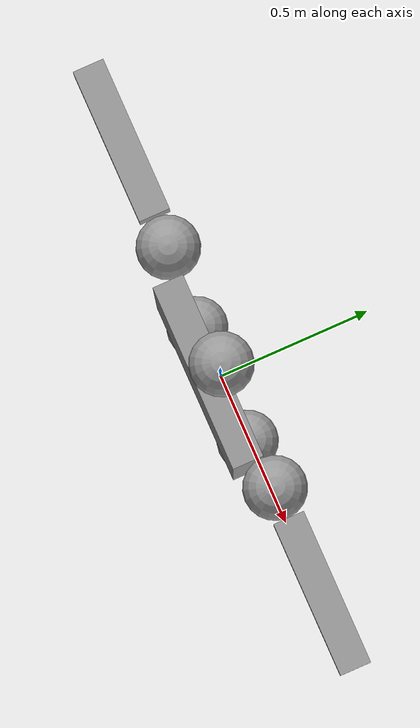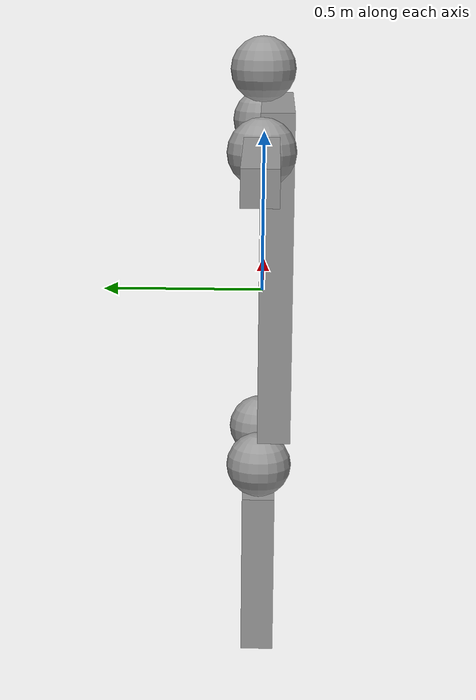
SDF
<?xml version='1.0'?>
<sdf version='1.6'>
  <model name='mr_robot_1'>
    <link name='link_0'>
      <inertial>
        <mass>1</mass>
        <inertia>
          <ixx>0.166667</ixx>
          <ixy>0</ixy>
          <ixz>0</ixz>
          <iyy>0.166667</iyy>
          <iyz>0</iyz>
          <izz>0.166667</izz>
        </inertia>
        <pose frame=''>0 0 0 0 -0 0</pose>
      </inertial>
      <pose frame=''>6.2e-05 -0.0405 0.089999 0 -0 0</pose>
      <gravity>1</gravity>
      <self_collide>0</self_collide>
      <kinematic>0</kinematic>
      <enable_wind>0</enable_wind>
      <visual name='visual'>
        <pose frame=''>0 0 0 0 -0 0</pose>
        <geometry>
          <box>
            <size>0.6 0.1 1</size>
          </box>
        </geometry>
        <material>
          <lighting>1</lighting>
          <script>
            <uri>file://media/materials/scripts/gazebo.material</uri>
            <name>Gazebo/Grey</name>
          </script>
          <shader type='vertex'>
            <normal_map>__default__</normal_map>
          </shader>
          <ambient>0.3 0.3 0.3 1</ambient>
          <diffuse>0.7 0.7 0.7 1</diffuse>
          <specular>0.01 0.01 0.01 1</specular>
          <emissive>0 0 0 1</emissive>
        </material>
        <transparency>0</transparency>
        <cast_shadows>1</cast_shadows>
      </visual>
      <collision name='collision'>
        <laser_retro>0</laser_retro>
        <max_contacts>10</max_contacts>
        <pose frame=''>0 0 0 0 -0 0</pose>
        <geometry>
          <box>
            <size>0.6 0.1 1</size>
          </box>
        </geometry>
        <surface>
          <friction>
            <ode>
              <mu>1</mu>
              <mu2>1</mu2>
              <fdir1>0 0 0</fdir1>
              <slip1>0</slip1>
              <slip2>0</slip2>
            </ode>
            <torsional>
              <coefficient>1</coefficient>
              <patch_radius>0</patch_radius>
              <surface_radius>0</surface_radius>
              <use_patch_radius>1</use_patch_radius>
              <ode>
                <slip>0</slip>
              </ode>
            </torsional>
          </friction>
          <bounce>
            <restitution_coefficient>0</restitution_coefficient>
            <threshold>1e+06</threshold>
          </bounce>
          <contact>
            <collide_without_contact>0</collide_without_contact>
            <collide_without_contact_bitmask>1</collide_without_contact_bitmask>
            <collide_bitmask>1</collide_bitmask>
            <ode>
              <soft_cfm>0</soft_cfm>
              <soft_erp>0.2</soft_erp>
              <kp>1e+13</kp>
              <kd>1</kd>
              <max_vel>0.01</max_vel>
              <min_depth>0</min_depth>
            </ode>
            <bullet>
              <split_impulse>1</split_impulse>
              <split_impulse_penetration_threshold>-0.01</split_impulse_penetration_threshold>
              <soft_cfm>0</soft_cfm>
              <soft_erp>0.2</soft_erp>
              <kp>1e+13</kp>
              <kd>1</kd>
            </bullet>
          </contact>
        </surface>
      </collision>
    </link>
    <link name='link_1_clone'>
      <inertial>
        <mass>1</mass>
        <inertia>
          <ixx>0.1</ixx>
          <ixy>0</ixy>
          <ixz>0</ixz>
          <iyy>0.1</iyy>
          <iyz>0</iyz>
          <izz>0.1</izz>
        </inertia>
        <pose frame=''>0 0 0 0 -0 0</pose>
      </inertial>
      <pose frame=''>0.200062 0.0045 -0.510001 0 -0 0</pose>
      <gravity>1</gravity>
      <self_collide>0</self_collide>
      <kinematic>0</kinematic>
      <enable_wind>0</enable_wind>
      <visual name='visual'>
        <pose frame=''>0 0 0 0 -0 0</pose>
        <geometry>
          <sphere>
            <radius>0.1</radius>
          </sphere>
        </geometry>
        <material>
          <lighting>1</lighting>
          <script>
            <uri>file://media/materials/scripts/gazebo.material</uri>
            <name>Gazebo/Grey</name>
          </script>
          <shader type='vertex'>
            <normal_map>__default__</normal_map>
          </shader>
          <ambient>0.3 0.3 0.3 1</ambient>
          <diffuse>0.7 0.7 0.7 1</diffuse>
          <specular>0.01 0.01 0.01 1</specular>
          <emissive>0 0 0 1</emissive>
        </material>
        <transparency>0</transparency>
        <cast_shadows>1</cast_shadows>
      </visual>
      <collision name='collision'>
        <laser_retro>0</laser_retro>
        <max_contacts>10</max_contacts>
        <pose frame=''>0 0 0 0 -0 0</pose>
        <geometry>
          <sphere>
            <radius>0.1</radius>
          </sphere>
        </geometry>
        <surface>
          <friction>
            <ode>
              <mu>1</mu>
              <mu2>1</mu2>
              <fdir1>0 0 0</fdir1>
              <slip1>0</slip1>
              <slip2>0</slip2>
            </ode>
            <torsional>
              <coefficient>1</coefficient>
              <patch_radius>0</patch_radius>
              <surface_radius>0</surface_radius>
              <use_patch_radius>1</use_patch_radius>
              <ode>
                <slip>0</slip>
              </ode>
            </torsional>
          </friction>
          <bounce>
            <restitution_coefficient>0</restitution_coefficient>
            <threshold>1e+06</threshold>
          </bounce>
          <contact>
            <collide_without_contact>0</collide_without_contact>
            <collide_without_contact_bitmask>1</collide_without_contact_bitmask>
            <collide_bitmask>1</collide_bitmask>
            <ode>
              <soft_cfm>0</soft_cfm>
              <soft_erp>0.2</soft_erp>
              <kp>1e+13</kp>
              <kd>1</kd>
              <max_vel>0.01</max_vel>
              <min_depth>0</min_depth>
            </ode>
            <bullet>
              <split_impulse>1</split_impulse>
              <split_impulse_penetration_threshold>-0.01</split_impulse_penetration_threshold>
              <soft_cfm>0</soft_cfm>
              <soft_erp>0.2</soft_erp>
              <kp>1e+13</kp>
              <kd>1</kd>
            </bullet>
          </contact>
        </surface>
      </collision>
    </link>
    <link name='link_1_clone_0'>
      <inertial>
        <mass>1</mass>
        <inertia>
          <ixx>0.1</ixx>
          <ixy>0</ixy>
          <ixz>0</ixz>
          <iyy>0.1</iyy>
          <iyz>0</iyz>
          <izz>0.1</izz>
        </inertia>
        <pose frame=''>0 0 0 0 -0 0</pose>
      </inertial>
      <pose frame=''>-0.399938 0.0045 0.489999 0 -0 0</pose>
      <gravity>1</gravity>
      <self_collide>0</self_collide>
      <kinematic>0</kinematic>
      <enable_wind>0</enable_wind>
      <visual name='visual'>
        <pose frame=''>0 0 0 0 -0 0</pose>
        <geometry>
          <sphere>
            <radius>0.1</radius>
          </sphere>
        </geometry>
        <material>
          <lighting>1</lighting>
          <script>
            <uri>file://media/materials/scripts/gazebo.material</uri>
            <name>Gazebo/Grey</name>
          </script>
          <shader type='vertex'>
            <normal_map>__default__</normal_map>
          </shader>
          <ambient>0.3 0.3 0.3 1</ambient>
          <diffuse>0.7 0.7 0.7 1</diffuse>
          <specular>0.01 0.01 0.01 1</specular>
          <emissive>0 0 0 1</emissive>
        </material>
        <transparency>0</transparency>
        <cast_shadows>1</cast_shadows>
      </visual>
      <collision name='collision'>
        <laser_retro>0</laser_retro>
        <max_contacts>10</max_contacts>
        <pose frame=''>0 0 0 0 -0 0</pose>
        <geometry>
          <sphere>
            <radius>0.1</radius>
          </sphere>
        </geometry>
        <surface>
          <friction>
            <ode>
              <mu>1</mu>
              <mu2>1</mu2>
              <fdir1>0 0 0</fdir1>
              <slip1>0</slip1>
              <slip2>0</slip2>
            </ode>
            <torsional>
              <coefficient>1</coefficient>
              <patch_radius>0</patch_radius>
              <surface_radius>0</surface_radius>
              <use_patch_radius>1</use_patch_radius>
              <ode>
                <slip>0</slip>
              </ode>
            </torsional>
          </friction>
          <bounce>
            <restitution_coefficient>0</restitution_coefficient>
            <threshold>1e+06</threshold>
          </bounce>
          <contact>
            <collide_without_contact>0</collide_without_contact>
            <collide_without_contact_bitmask>1</collide_without_contact_bitmask>
            <collide_bitmask>1</collide_bitmask>
            <ode>
              <soft_cfm>0</soft_cfm>
              <soft_erp>0.2</soft_erp>
              <kp>1e+13</kp>
              <kd>1</kd>
              <max_vel>0.01</max_vel>
              <min_depth>0</min_depth>
            </ode>
            <bullet>
              <split_impulse>1</split_impulse>
              <split_impulse_penetration_threshold>-0.01</split_impulse_penetration_threshold>
              <soft_cfm>0</soft_cfm>
              <soft_erp>0.2</soft_erp>
              <kp>1e+13</kp>
              <kd>1</kd>
            </bullet>
          </contact>
        </surface>
      </collision>
    </link>
    <link name='link_1_clone_0_clone'>
      <inertial>
        <mass>1</mass>
        <inertia>
          <ixx>0.1</ixx>
          <ixy>0</ixy>
          <ixz>0</ixz>
          <iyy>0.1</iyy>
          <iyz>0</iyz>
          <izz>0.1</izz>
        </inertia>
        <pose frame=''>0 0 0 0 -0 0</pose>
      </inertial>
      <pose frame=''>-0.199938 0.0045 -0.510001 0 -0 0</pose>
      <gravity>1</gravity>
      <self_collide>0</self_collide>
      <kinematic>0</kinematic>
      <enable_wind>0</enable_wind>
      <visual name='visual'>
        <pose frame=''>0 0 0 0 -0 0</pose>
        <geometry>
          <sphere>
            <radius>0.1</radius>
          </sphere>
        </geometry>
        <material>
          <lighting>1</lighting>
          <script>
            <uri>file://media/materials/scripts/gazebo.material</uri>
            <name>Gazebo/Grey</name>
          </script>
          <shader type='vertex'>
            <normal_map>__default__</normal_map>
          </shader>
          <ambient>0.3 0.3 0.3 1</ambient>
          <diffuse>0.7 0.7 0.7 1</diffuse>
          <specular>0.01 0.01 0.01 1</specular>
          <emissive>0 0 0 1</emissive>
        </material>
        <transparency>0</transparency>
        <cast_shadows>1</cast_shadows>
      </visual>
      <collision name='collision'>
        <laser_retro>0</laser_retro>
        <max_contacts>10</max_contacts>
        <pose frame=''>0 0 0 0 -0 0</pose>
        <geometry>
          <sphere>
            <radius>0.1</radius>
          </sphere>
        </geometry>
        <surface>
          <friction>
            <ode>
              <mu>1</mu>
              <mu2>1</mu2>
              <fdir1>0 0 0</fdir1>
              <slip1>0</slip1>
              <slip2>0</slip2>
            </ode>
            <torsional>
              <coefficient>1</coefficient>
              <patch_radius>0</patch_radius>
              <surface_radius>0</surface_radius>
              <use_patch_radius>1</use_patch_radius>
              <ode>
                <slip>0</slip>
              </ode>
            </torsional>
          </friction>
          <bounce>
            <restitution_coefficient>0</restitution_coefficient>
            <threshold>1e+06</threshold>
          </bounce>
          <contact>
            <collide_without_contact>0</collide_without_contact>
            <collide_without_contact_bitmask>1</collide_without_contact_bitmask>
            <collide_bitmask>1</collide_bitmask>
            <ode>
              <soft_cfm>0</soft_cfm>
              <soft_erp>0.2</soft_erp>
              <kp>1e+13</kp>
              <kd>1</kd>
              <max_vel>0.01</max_vel>
              <min_depth>0</min_depth>
            </ode>
            <bullet>
              <split_impulse>1</split_impulse>
              <split_impulse_penetration_threshold>-0.01</split_impulse_penetration_threshold>
              <soft_cfm>0</soft_cfm>
              <soft_erp>0.2</soft_erp>
              <kp>1e+13</kp>
              <kd>1</kd>
            </bullet>
          </contact>
        </surface>
      </collision>
    </link>
    <link name='link_1_clone_1'>
      <inertial>
        <mass>1</mass>
        <inertia>
          <ixx>0.1</ixx>
          <ixy>0</ixy>
          <ixz>0</ixz>
          <iyy>0.1</iyy>
          <iyz>0</iyz>
          <izz>0.1</izz>
        </inertia>
        <pose frame=''>0 0 0 0 -0 0</pose>
      </inertial>
      <pose frame=''>0.400062 0.0045 0.489999 0 -0 0</pose>
      <gravity>1</gravity>
      <self_collide>0</self_collide>
      <kinematic>0</kinematic>
      <enable_wind>0</enable_wind>
      <visual name='visual'>
        <pose frame=''>0 0 0 0 -0 0</pose>
        <geometry>
          <sphere>
            <radius>0.1</radius>
          </sphere>
        </geometry>
        <material>
          <lighting>1</lighting>
          <script>
            <uri>file://media/materials/scripts/gazebo.material</uri>
            <name>Gazebo/Grey</name>
          </script>
          <shader type='vertex'>
            <normal_map>__default__</normal_map>
          </shader>
          <ambient>0.3 0.3 0.3 1</ambient>
          <diffuse>0.7 0.7 0.7 1</diffuse>
          <specular>0.01 0.01 0.01 1</specular>
          <emissive>0 0 0 1</emissive>
        </material>
        <transparency>0</transparency>
        <cast_shadows>1</cast_shadows>
      </visual>
      <collision name='collision'>
        <laser_retro>0</laser_retro>
        <max_contacts>10</max_contacts>
        <pose frame=''>0 0 0 0 -0 0</pose>
        <geometry>
          <sphere>
            <radius>0.1</radius>
          </sphere>
        </geometry>
        <surface>
          <friction>
            <ode>
              <mu>1</mu>
              <mu2>1</mu2>
              <fdir1>0 0 0</fdir1>
              <slip1>0</slip1>
              <slip2>0</slip2>
            </ode>
            <torsional>
              <coefficient>1</coefficient>
              <patch_radius>0</patch_radius>
              <surface_radius>0</surface_radius>
              <use_patch_radius>1</use_patch_radius>
              <ode>
                <slip>0</slip>
              </ode>
            </torsional>
          </friction>
          <bounce>
            <restitution_coefficient>0</restitution_coefficient>
            <threshold>1e+06</threshold>
          </bounce>
          <contact>
            <collide_without_contact>0</collide_without_contact>
            <collide_without_contact_bitmask>1</collide_without_contact_bitmask>
            <collide_bitmask>1</collide_bitmask>
            <ode>
              <soft_cfm>0</soft_cfm>
              <soft_erp>0.2</soft_erp>
              <kp>1e+13</kp>
              <kd>1</kd>
              <max_vel>0.01</max_vel>
              <min_depth>0</min_depth>
            </ode>
            <bullet>
              <split_impulse>1</split_impulse>
              <split_impulse_penetration_threshold>-0.01</split_impulse_penetration_threshold>
              <soft_cfm>0</soft_cfm>
              <soft_erp>0.2</soft_erp>
              <kp>1e+13</kp>
              <kd>1</kd>
            </bullet>
          </contact>
        </surface>
      </collision>
    </link>
    <link name='link_1_clone_1_clone'>
      <inertial>
        <mass>1</mass>
        <inertia>
          <ixx>0.1</ixx>
          <ixy>0</ixy>
          <ixz>0</ixz>
          <iyy>0.1</iyy>
          <iyz>0</iyz>
          <izz>0.1</izz>
        </inertia>
        <pose frame=''>0 0 0 0 -0 0</pose>
      </inertial>
      <pose frame=''>6.2e-05 0.0045 0.689999 0 -0 0</pose>
      <gravity>1</gravity>
      <self_collide>0</self_collide>
      <kinematic>0</kinematic>
      <enable_wind>0</enable_wind>
      <visual name='visual'>
        <pose frame=''>0 0 0 0 -0 0</pose>
        <geometry>
          <sphere>
            <radius>0.1</radius>
          </sphere>
        </geometry>
        <material>
          <lighting>1</lighting>
          <script>
            <uri>file://media/materials/scripts/gazebo.material</uri>
            <name>Gazebo/Grey</name>
          </script>
          <shader type='vertex'>
            <normal_map>__default__</normal_map>
          </shader>
          <ambient>0.3 0.3 0.3 1</ambient>
          <diffuse>0.7 0.7 0.7 1</diffuse>
          <specular>0.01 0.01 0.01 1</specular>
          <emissive>0 0 0 1</emissive>
        </material>
        <transparency>0</transparency>
        <cast_shadows>1</cast_shadows>
      </visual>
      <collision name='collision'>
        <laser_retro>0</laser_retro>
        <max_contacts>10</max_contacts>
        <pose frame=''>0 0 0 0 -0 0</pose>
        <geometry>
          <sphere>
            <radius>0.1</radius>
          </sphere>
        </geometry>
        <surface>
          <friction>
            <ode>
              <mu>1</mu>
              <mu2>1</mu2>
              <fdir1>0 0 0</fdir1>
              <slip1>0</slip1>
              <slip2>0</slip2>
            </ode>
            <torsional>
              <coefficient>1</coefficient>
              <patch_radius>0</patch_radius>
              <surface_radius>0</surface_radius>
              <use_patch_radius>1</use_patch_radius>
              <ode>
                <slip>0</slip>
              </ode>
            </torsional>
          </friction>
          <bounce>
            <restitution_coefficient>0</restitution_coefficient>
            <threshold>1e+06</threshold>
          </bounce>
          <contact>
            <collide_without_contact>0</collide_without_contact>
            <collide_without_contact_bitmask>1</collide_without_contact_bitmask>
            <collide_bitmask>1</collide_bitmask>
            <ode>
              <soft_cfm>0</soft_cfm>
              <soft_erp>0.2</soft_erp>
              <kp>1e+13</kp>
              <kd>1</kd>
              <max_vel>0.01</max_vel>
              <min_depth>0</min_depth>
            </ode>
            <bullet>
              <split_impulse>1</split_impulse>
              <split_impulse_penetration_threshold>-0.01</split_impulse_penetration_threshold>
              <soft_cfm>0</soft_cfm>
              <soft_erp>0.2</soft_erp>
              <kp>1e+13</kp>
              <kd>1</kd>
            </bullet>
          </contact>
        </surface>
      </collision>
    </link>
    <link name='link_2_clone'>
      <inertial>
        <mass>1</mass>
        <inertia>
          <ixx>0.166667</ixx>
          <ixy>0</ixy>
          <ixz>0</ixz>
          <iyy>0.166667</iyy>
          <iyz>0</iyz>
          <izz>0.166667</izz>
        </inertia>
        <pose frame=''>0 0 0 0 -0 0</pose>
      </inertial>
      <pose frame=''>-0.199938 0.0045 -0.860001 0 -0 0</pose>
      <gravity>1</gravity>
      <self_collide>0</self_collide>
      <kinematic>0</kinematic>
      <enable_wind>0</enable_wind>
      <visual name='visual'>
        <pose frame=''>0 0 0 0 -0 0</pose>
        <geometry>
          <box>
            <size>0.1 0.1 0.5</size>
          </box>
        </geometry>
        <material>
          <lighting>1</lighting>
          <script>
            <uri>file://media/materials/scripts/gazebo.material</uri>
            <name>Gazebo/Grey</name>
          </script>
          <shader type='vertex'>
            <normal_map>__default__</normal_map>
          </shader>
          <ambient>0.3 0.3 0.3 1</ambient>
          <diffuse>0.7 0.7 0.7 1</diffuse>
          <specular>0.01 0.01 0.01 1</specular>
          <emissive>0 0 0 1</emissive>
        </material>
        <transparency>0</transparency>
        <cast_shadows>1</cast_shadows>
      </visual>
      <collision name='collision'>
        <laser_retro>0</laser_retro>
        <max_contacts>10</max_contacts>
        <pose frame=''>0 0 0 0 -0 0</pose>
        <geometry>
          <box>
            <size>0.1 0.1 0.5</size>
          </box>
        </geometry>
        <surface>
          <friction>
            <ode>
              <mu>1</mu>
              <mu2>1</mu2>
              <fdir1>0 0 0</fdir1>
              <slip1>0</slip1>
              <slip2>0</slip2>
            </ode>
            <torsional>
              <coefficient>1</coefficient>
              <patch_radius>0</patch_radius>
              <surface_radius>0</surface_radius>
              <use_patch_radius>1</use_patch_radius>
              <ode>
                <slip>0</slip>
              </ode>
            </torsional>
          </friction>
          <bounce>
            <restitution_coefficient>0</restitution_coefficient>
            <threshold>1e+06</threshold>
          </bounce>
          <contact>
            <collide_without_contact>0</collide_without_contact>
            <collide_without_contact_bitmask>1</collide_without_contact_bitmask>
            <collide_bitmask>1</collide_bitmask>
            <ode>
              <soft_cfm>0</soft_cfm>
              <soft_erp>0.2</soft_erp>
              <kp>1e+13</kp>
              <kd>1</kd>
              <max_vel>0.01</max_vel>
              <min_depth>0</min_depth>
            </ode>
            <bullet>
              <split_impulse>1</split_impulse>
              <split_impulse_penetration_threshold>-0.01</split_impulse_penetration_threshold>
              <soft_cfm>0</soft_cfm>
              <soft_erp>0.2</soft_erp>
              <kp>1e+13</kp>
              <kd>1</kd>
            </bullet>
          </contact>
        </surface>
      </collision>
    </link>
    <link name='link_2_clone_0'>
      <inertial>
        <mass>1</mass>
        <inertia>
          <ixx>0.166667</ixx>
          <ixy>0</ixy>
          <ixz>0</ixz>
          <iyy>0.166667</iyy>
          <iyz>0</iyz>
          <izz>0.166667</izz>
        </inertia>
        <pose frame=''>0 0 0 0 -0 0</pose>
      </inertial>
      <pose frame=''>0.200062 0.0045 -0.860001 0 -0 0</pose>
      <gravity>1</gravity>
      <self_collide>0</self_collide>
      <kinematic>0</kinematic>
      <enable_wind>0</enable_wind>
      <visual name='visual'>
        <pose frame=''>0 0 0 0 -0 0</pose>
        <geometry>
          <box>
            <size>0.1 0.1 0.5</size>
          </box>
        </geometry>
        <material>
          <lighting>1</lighting>
          <script>
            <uri>file://media/materials/scripts/gazebo.material</uri>
            <name>Gazebo/Grey</name>
          </script>
          <shader type='vertex'>
            <normal_map>__default__</normal_map>
          </shader>
          <ambient>0.3 0.3 0.3 1</ambient>
          <diffuse>0.7 0.7 0.7 1</diffuse>
          <specular>0.01 0.01 0.01 1</specular>
          <emissive>0 0 0 1</emissive>
        </material>
        <transparency>0</transparency>
        <cast_shadows>1</cast_shadows>
      </visual>
      <collision name='collision'>
        <laser_retro>0</laser_retro>
        <max_contacts>10</max_contacts>
        <pose frame=''>0 0 0 0 -0 0</pose>
        <geometry>
          <box>
            <size>0.1 0.1 0.5</size>
          </box>
        </geometry>
        <surface>
          <friction>
            <ode>
              <mu>1</mu>
              <mu2>1</mu2>
              <fdir1>0 0 0</fdir1>
              <slip1>0</slip1>
              <slip2>0</slip2>
            </ode>
            <torsional>
              <coefficient>1</coefficient>
              <patch_radius>0</patch_radius>
              <surface_radius>0</surface_radius>
              <use_patch_radius>1</use_patch_radius>
              <ode>
                <slip>0</slip>
              </ode>
            </torsional>
          </friction>
          <bounce>
            <restitution_coefficient>0</restitution_coefficient>
            <threshold>1e+06</threshold>
          </bounce>
          <contact>
            <collide_without_contact>0</collide_without_contact>
            <collide_without_contact_bitmask>1</collide_without_contact_bitmask>
            <collide_bitmask>1</collide_bitmask>
            <ode>
              <soft_cfm>0</soft_cfm>
              <soft_erp>0.2</soft_erp>
              <kp>1e+13</kp>
              <kd>1</kd>
              <max_vel>0.01</max_vel>
              <min_depth>0</min_depth>
            </ode>
            <bullet>
              <split_impulse>1</split_impulse>
              <split_impulse_penetration_threshold>-0.01</split_impulse_penetration_threshold>
              <soft_cfm>0</soft_cfm>
              <soft_erp>0.2</soft_erp>
              <kp>1e+13</kp>
              <kd>1</kd>
            </bullet>
          </contact>
        </surface>
      </collision>
    </link>
    <link name='link_2_clone_1'>
      <inertial>
        <mass>1</mass>
        <inertia>
          <ixx>0.166667</ixx>
          <ixy>0</ixy>
          <ixz>0</ixz>
          <iyy>0.166667</iyy>
          <iyz>0</iyz>
          <izz>0.166667</izz>
        </inertia>
        <pose frame=''>0 0 0 0 -0 0</pose>
      </inertial>
      <pose frame=''>-0.751189 0.0045 0.489999 3.14159 -1.54397 3.14159</pose>
      <gravity>1</gravity>
      <self_collide>0</self_collide>
      <kinematic>0</kinematic>
      <enable_wind>0</enable_wind>
      <visual name='visual'>
        <pose frame=''>0 0 0 0 -0 0</pose>
        <geometry>
          <box>
            <size>0.1 0.1 0.5</size>
          </box>
        </geometry>
        <material>
          <lighting>1</lighting>
          <script>
            <uri>file://media/materials/scripts/gazebo.material</uri>
            <name>Gazebo/Grey</name>
          </script>
          <shader type='vertex'>
            <normal_map>__default__</normal_map>
          </shader>
          <ambient>0.3 0.3 0.3 1</ambient>
          <diffuse>0.7 0.7 0.7 1</diffuse>
          <specular>0.01 0.01 0.01 1</specular>
          <emissive>0 0 0 1</emissive>
        </material>
        <transparency>0</transparency>
        <cast_shadows>1</cast_shadows>
      </visual>
      <collision name='collision'>
        <laser_retro>0</laser_retro>
        <max_contacts>10</max_contacts>
        <pose frame=''>0 0 0 0 -0 0</pose>
        <geometry>
          <box>
            <size>0.1 0.1 0.5</size>
          </box>
        </geometry>
        <surface>
          <friction>
            <ode>
              <mu>1</mu>
              <mu2>1</mu2>
              <fdir1>0 0 0</fdir1>
              <slip1>0</slip1>
              <slip2>0</slip2>
            </ode>
            <torsional>
              <coefficient>1</coefficient>
              <patch_radius>0</patch_radius>
              <surface_radius>0</surface_radius>
              <use_patch_radius>1</use_patch_radius>
              <ode>
                <slip>0</slip>
              </ode>
            </torsional>
          </friction>
          <bounce>
            <restitution_coefficient>0</restitution_coefficient>
            <threshold>1e+06</threshold>
          </bounce>
          <contact>
            <collide_without_contact>0</collide_without_contact>
            <collide_without_contact_bitmask>1</collide_without_contact_bitmask>
            <collide_bitmask>1</collide_bitmask>
            <ode>
              <soft_cfm>0</soft_cfm>
              <soft_erp>0.2</soft_erp>
              <kp>1e+13</kp>
              <kd>1</kd>
              <max_vel>0.01</max_vel>
              <min_depth>0</min_depth>
            </ode>
            <bullet>
              <split_impulse>1</split_impulse>
              <split_impulse_penetration_threshold>-0.01</split_impulse_penetration_threshold>
              <soft_cfm>0</soft_cfm>
              <soft_erp>0.2</soft_erp>
              <kp>1e+13</kp>
              <kd>1</kd>
            </bullet>
          </contact>
        </surface>
      </collision>
    </link>
    <link name='link_2_clone_2'>
      <inertial>
        <mass>1</mass>
        <inertia>
          <ixx>0.166667</ixx>
          <ixy>0</ixy>
          <ixz>0</ixz>
          <iyy>0.166667</iyy>
          <iyz>0</iyz>
          <izz>0.166667</izz>
        </inertia>
        <pose frame=''>0 0 0 0 -0 0</pose>
      </inertial>
      <pose frame=''>0.750696 0.0045 0.489999 3.14159 -1.55769 3.14159</pose>
      <gravity>1</gravity>
      <self_collide>0</self_collide>
      <kinematic>0</kinematic>
      <enable_wind>0</enable_wind>
      <visual name='visual'>
        <pose frame=''>0 0 0 0 -0 0</pose>
        <geometry>
          <box>
            <size>0.1 0.1 0.5</size>
          </box>
        </geometry>
        <material>
          <lighting>1</lighting>
          <script>
            <uri>file://media/materials/scripts/gazebo.material</uri>
            <name>Gazebo/Grey</name>
          </script>
          <shader type='vertex'>
            <normal_map>__default__</normal_map>
          </shader>
          <ambient>0.3 0.3 0.3 1</ambient>
          <diffuse>0.7 0.7 0.7 1</diffuse>
          <specular>0.01 0.01 0.01 1</specular>
          <emissive>0 0 0 1</emissive>
        </material>
        <transparency>0</transparency>
        <cast_shadows>1</cast_shadows>
      </visual>
      <collision name='collision'>
        <laser_retro>0</laser_retro>
        <max_contacts>10</max_contacts>
        <pose frame=''>0 0 0 0 -0 0</pose>
        <geometry>
          <box>
            <size>0.1 0.1 0.5</size>
          </box>
        </geometry>
        <surface>
          <friction>
            <ode>
              <mu>1</mu>
              <mu2>1</mu2>
              <fdir1>0 0 0</fdir1>
              <slip1>0</slip1>
              <slip2>0</slip2>
            </ode>
            <torsional>
              <coefficient>1</coefficient>
              <patch_radius>0</patch_radius>
              <surface_radius>0</surface_radius>
              <use_patch_radius>1</use_patch_radius>
              <ode>
                <slip>0</slip>
              </ode>
            </torsional>
          </friction>
          <bounce>
            <restitution_coefficient>0</restitution_coefficient>
            <threshold>1e+06</threshold>
          </bounce>
          <contact>
            <collide_without_contact>0</collide_without_contact>
            <collide_without_contact_bitmask>1</collide_without_contact_bitmask>
            <collide_bitmask>1</collide_bitmask>
            <ode>
              <soft_cfm>0</soft_cfm>
              <soft_erp>0.2</soft_erp>
              <kp>1e+13</kp>
              <kd>1</kd>
              <max_vel>0.01</max_vel>
              <min_depth>0</min_depth>
            </ode>
            <bullet>
              <split_impulse>1</split_impulse>
              <split_impulse_penetration_threshold>-0.01</split_impulse_penetration_threshold>
              <soft_cfm>0</soft_cfm>
              <soft_erp>0.2</soft_erp>
              <kp>1e+13</kp>
              <kd>1</kd>
            </bullet>
          </contact>
        </surface>
      </collision>
    </link>
    <joint name='link_0_JOINT_10' type='fixed'>
      <parent>link_0</parent>
      <child>link_1_clone_1_clone</child>
      <pose frame=''>0 0 0 0 -0 0</pose>
      <physics>
        <ode>
          <limit>
            <cfm>0</cfm>
            <erp>0.2</erp>
          </limit>
          <suspension>
            <cfm>0</cfm>
            <erp>0.2</erp>
          </suspension>
        </ode>
      </physics>
    </joint>
    <joint name='link_0_JOINT_1' type='fixed'>
      <parent>link_0</parent>
      <child>link_1_clone</child>
      <pose frame=''>0 0 0 0 -0 0</pose>
      <physics>
        <ode>
          <limit>
            <cfm>0</cfm>
            <erp>0.2</erp>
          </limit>
          <suspension>
            <cfm>0</cfm>
            <erp>0.2</erp>
          </suspension>
        </ode>
      </physics>
    </joint>
    <joint name='link_0_JOINT_2' type='fixed'>
      <parent>link_0</parent>
      <child>link_1_clone_0_clone</child>
      <pose frame=''>0 0 0 0 -0 0</pose>
      <physics>
        <ode>
          <limit>
            <cfm>0</cfm>
            <erp>0.2</erp>
          </limit>
          <suspension>
            <cfm>0</cfm>
            <erp>0.2</erp>
          </suspension>
        </ode>
      </physics>
    </joint>
    <joint name='link_0_JOINT_5' type='fixed'>
      <parent>link_0</parent>
      <child>link_1_clone_0</child>
      <pose frame=''>0 0 0 0 -0 0</pose>
      <physics>
        <ode>
          <limit>
            <cfm>0</cfm>
            <erp>0.2</erp>
          </limit>
          <suspension>
            <cfm>0</cfm>
            <erp>0.2</erp>
          </suspension>
        </ode>
      </physics>
    </joint>
    <joint name='link_0_JOINT_7' type='fixed'>
      <parent>link_0</parent>
      <child>link_1_clone_1</child>
      <pose frame=''>0 0 0 0 -0 0</pose>
      <physics>
        <ode>
          <limit>
            <cfm>0</cfm>
            <erp>0.2</erp>
          </limit>
          <suspension>
            <cfm>0</cfm>
            <erp>0.2</erp>
          </suspension>
        </ode>
      </physics>
    </joint>
    <joint name='link_1_clone_0_JOINT_9' type='revolute2'>
      <parent>link_1_clone_0</parent>
      <child>link_2_clone_1</child>
      <pose frame=''>0 0 0 0 -0 0</pose>
      <axis>
        <xyz>1 0 0</xyz>
        <use_parent_model_frame>0</use_parent_model_frame>
        <limit>
          <lower>-1.79769e+308</lower>
          <upper>1.79769e+308</upper>
          <effort>-1</effort>
          <velocity>-1</velocity>
        </limit>
        <dynamics>
          <spring_reference>0</spring_reference>
          <spring_stiffness>0</spring_stiffness>
          <damping>0</damping>
        </dynamics>
      </axis>
      <axis2>
        <xyz>0 1 0</xyz>
        <use_parent_model_frame>0</use_parent_model_frame>
        <dynamics>
          <spring_reference>0</spring_reference>
          <spring_stiffness>0</spring_stiffness>
          <damping>0</damping>
        </dynamics>
        <limit>
          <lower>-1.79769e+308</lower>
          <upper>1.79769e+308</upper>
          <effort>-1</effort>
          <velocity>-1</velocity>
        </limit>
      </axis2>
      <physics>
        <ode>
          <limit>
            <cfm>0</cfm>
            <erp>0.2</erp>
          </limit>
          <suspension>
            <cfm>0</cfm>
            <erp>0.2</erp>
          </suspension>
        </ode>
      </physics>
    </joint>
    <joint name='link_1_clone_0_clone_JOINT_3' type='revolute2'>
      <parent>link_1_clone_0_clone</parent>
      <child>link_2_clone</child>
      <pose frame=''>0 0 0 0 -0 0</pose>
      <axis>
        <xyz>1 0 0</xyz>
        <use_parent_model_frame>0</use_parent_model_frame>
        <limit>
          <lower>-1.79769e+308</lower>
          <upper>1.79769e+308</upper>
          <effort>-1</effort>
          <velocity>-1</velocity>
        </limit>
        <dynamics>
          <spring_reference>0</spring_reference>
          <spring_stiffness>0</spring_stiffness>
          <damping>0</damping>
        </dynamics>
      </axis>
      <axis2>
        <xyz>0 1 0</xyz>
        <use_parent_model_frame>0</use_parent_model_frame>
        <dynamics>
          <spring_reference>0</spring_reference>
          <spring_stiffness>0</spring_stiffness>
          <damping>0</damping>
        </dynamics>
        <limit>
          <lower>-1.79769e+308</lower>
          <upper>1.79769e+308</upper>
          <effort>-1</effort>
          <velocity>-1</velocity>
        </limit>
      </axis2>
      <physics>
        <ode>
          <limit>
            <cfm>0</cfm>
            <erp>0.2</erp>
          </limit>
          <suspension>
            <cfm>0</cfm>
            <erp>0.2</erp>
          </suspension>
        </ode>
      </physics>
    </joint>
    <joint name='link_1_clone_1_JOINT_8' type='revolute2'>
      <parent>link_1_clone_1</parent>
      <child>link_2_clone_2</child>
      <pose frame=''>0 0 0 0 -0 0</pose>
      <axis>
        <xyz>1 0 0</xyz>
        <use_parent_model_frame>0</use_parent_model_frame>
        <limit>
          <lower>-1.79769e+308</lower>
          <upper>1.79769e+308</upper>
          <effort>-1</effort>
          <velocity>-1</velocity>
        </limit>
        <dynamics>
          <spring_reference>0</spring_reference>
          <spring_stiffness>0</spring_stiffness>
          <damping>0</damping>
        </dynamics>
      </axis>
      <axis2>
        <xyz>0 1 0</xyz>
        <use_parent_model_frame>0</use_parent_model_frame>
        <dynamics>
          <spring_reference>0</spring_reference>
          <spring_stiffness>0</spring_stiffness>
          <damping>0</damping>
        </dynamics>
        <limit>
          <lower>-1.79769e+308</lower>
          <upper>1.79769e+308</upper>
          <effort>-1</effort>
          <velocity>-1</velocity>
        </limit>
      </axis2>
      <physics>
        <ode>
          <limit>
            <cfm>0</cfm>
            <erp>0.2</erp>
          </limit>
          <suspension>
            <cfm>0</cfm>
            <erp>0.2</erp>
          </suspension>
        </ode>
      </physics>
    </joint>
    <joint name='link_1_clone_JOINT_4' type='revolute2'>
      <parent>link_1_clone</parent>
      <child>link_2_clone_0</child>
      <pose frame=''>0 0 0 0 -0 0</pose>
      <axis>
        <xyz>1 0 0</xyz>
        <use_parent_model_frame>0</use_parent_model_frame>
        <limit>
          <lower>-1.79769e+308</lower>
          <upper>1.79769e+308</upper>
          <effort>-1</effort>
          <velocity>-1</velocity>
        </limit>
        <dynamics>
          <spring_reference>0</spring_reference>
          <spring_stiffness>0</spring_stiffness>
          <damping>0</damping>
        </dynamics>
      </axis>
      <axis2>
        <xyz>0 1 0</xyz>
        <use_parent_model_frame>0</use_parent_model_frame>
        <dynamics>
          <spring_reference>0</spring_reference>
          <spring_stiffness>0</spring_stiffness>
          <damping>0</damping>
        </dynamics>
        <limit>
          <lower>-1.79769e+308</lower>
          <upper>1.79769e+308</upper>
          <effort>-1</effort>
          <velocity>-1</velocity>
        </limit>
      </axis2>
      <physics>
        <ode>
          <limit>
            <cfm>0</cfm>
            <erp>0.2</erp>
          </limit>
          <suspension>
            <cfm>0</cfm>
            <erp>0.2</erp>
          </suspension>
        </ode>
      </physics>
    </joint>
    <static>1</static>
    <allow_auto_disable>1</allow_auto_disable>
  </model>
</sdf>
